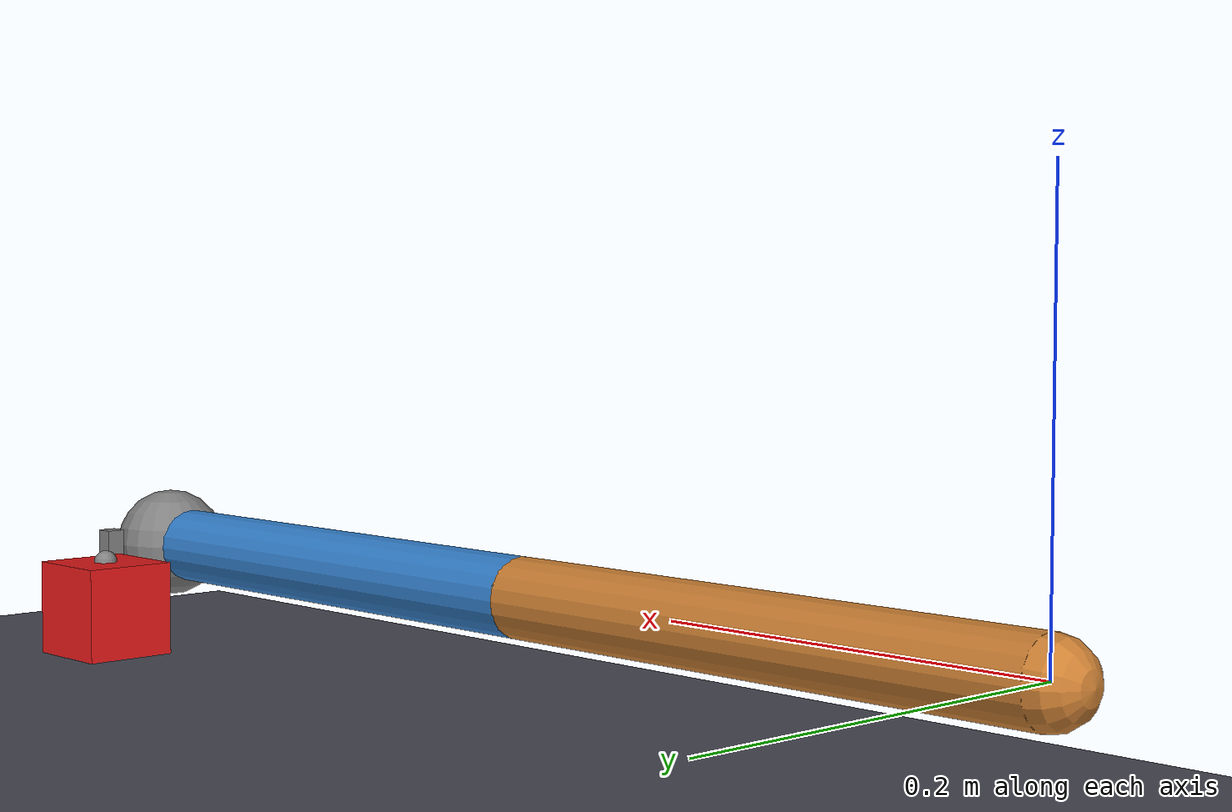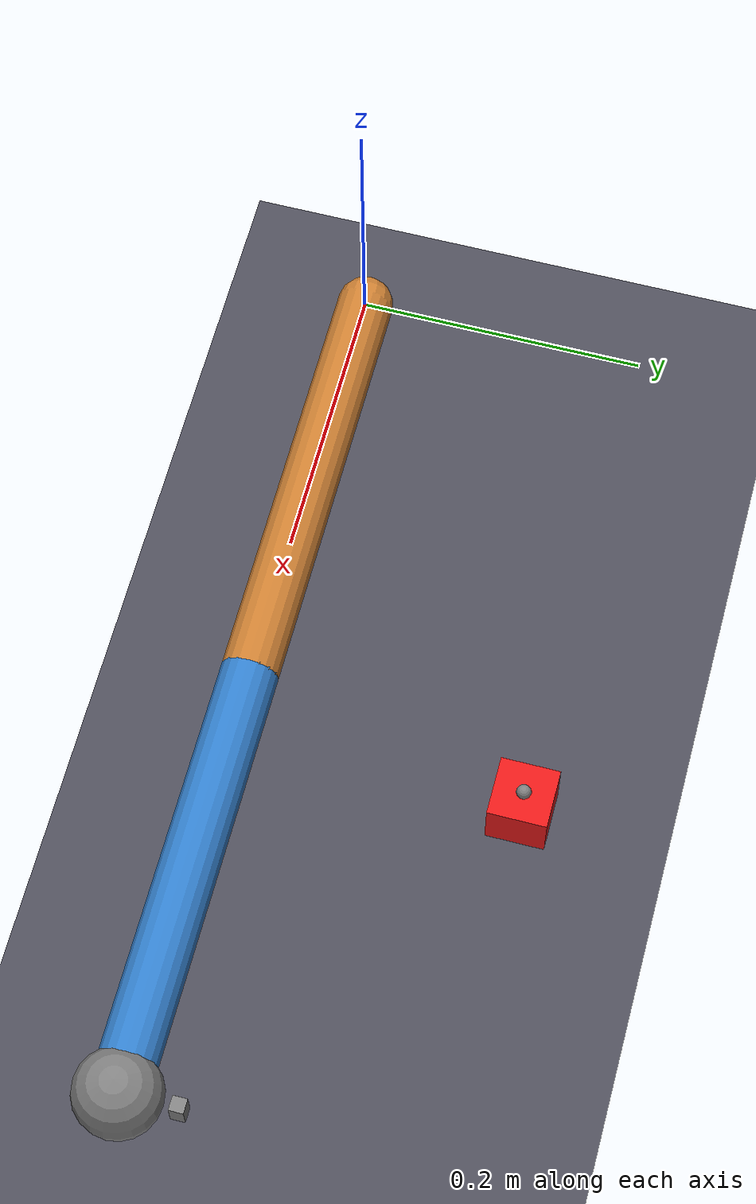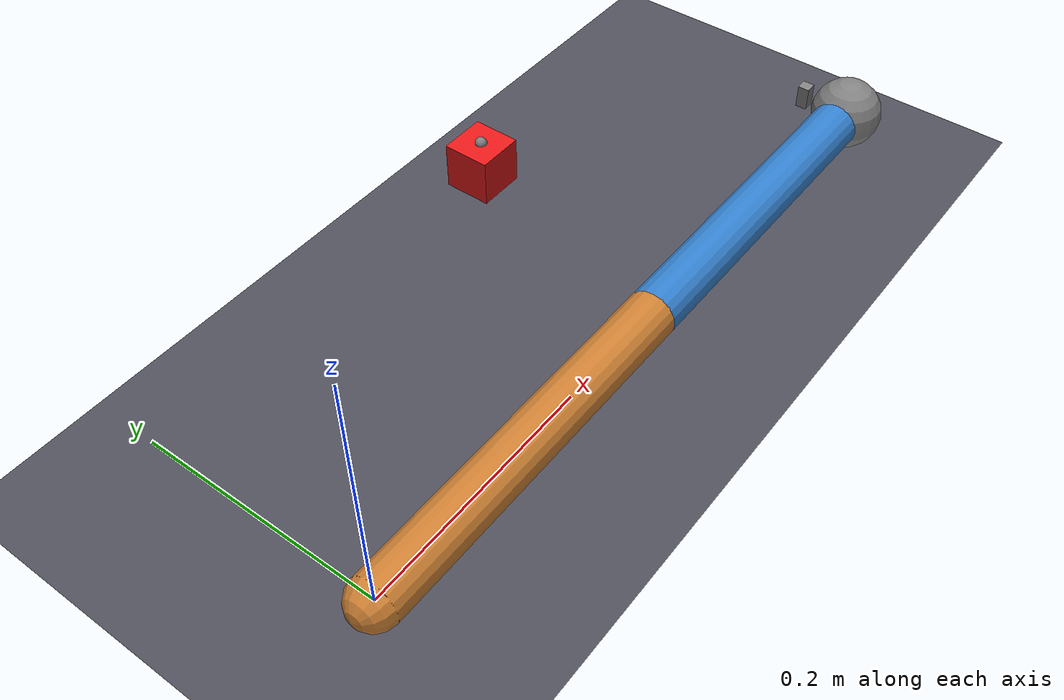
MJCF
<mujoco model="arm_sites">
  <!-- The two-joint arm of tests/fixtures/mjcf/two_joint_arm.xml with two
       sites, a light and a fixed camera, for the robotics golden cases. -->
  <compiler angle="radian"/>
  <option timestep="0.002" gravity="0 0 -9.81"/>
  <visual>
    <global offwidth="320" offheight="240"/>
  </visual>
  <default>
    <geom contype="0" conaffinity="0"/>
    <joint damping="0.5"/>
  </default>
  <worldbody>
    <light name="key" pos="0 0 2" dir="0 0 -1"/>
    <camera name="overhead" pos="0.2 0 1.2" xyaxes="1 0 0 0 1 0"/>
    <geom name="floor" type="plane" size="1 1 0.01" pos="0 0 -0.05" rgba="0.3 0.3 0.35 1"/>
    <body name="link1" pos="0 0 0">
      <joint name="j1" type="hinge" axis="0 0 1" range="-3.14 3.14"/>
      <geom type="capsule" fromto="0 0 0 0.3 0 0" size="0.02" rgba="0.8 0.5 0.2 1"/>
      <body name="link2" pos="0.3 0 0">
        <joint name="j2" type="hinge" axis="0 0 1" range="-3.14 3.14"/>
        <geom type="capsule" fromto="0 0 0 0.3 0 0" size="0.02" rgba="0.2 0.5 0.8 1"/>
        <body name="end_effector" pos="0.3 0 0">
          <site name="ee_site" pos="0 0 0.01" size="0.005"/>
          <geom name="ee_sphere" type="sphere" size="0.03"/>
          <body name="finger" pos="0 0 0">
            <joint name="j_grip" type="slide" axis="0 1 0" range="-0.04 0.04" damping="1.0"/>
            <geom name="finger_tip" type="box" size="0.005 0.005 0.01" pos="0 0.04 0"
                  contype="1" conaffinity="1"/>
          </body>
        </body>
      </body>
    </body>
    <body name="block" pos="0.35 0.20 0.01">
      <site name="block_site" pos="0 0 0.02" size="0.005"/>
      <geom name="block_geom" type="box" size="0.02 0.02 0.02" contype="1" conaffinity="1"
            rgba="0.9 0.1 0.1 1"/>
    </body>
  </worldbody>
  <actuator>
    <position name="a1" joint="j1" kp="50"/>
    <position name="a2" joint="j2" kp="50"/>
    <position name="a_grip" joint="j_grip" kp="100"/>
  </actuator>
</mujoco>
